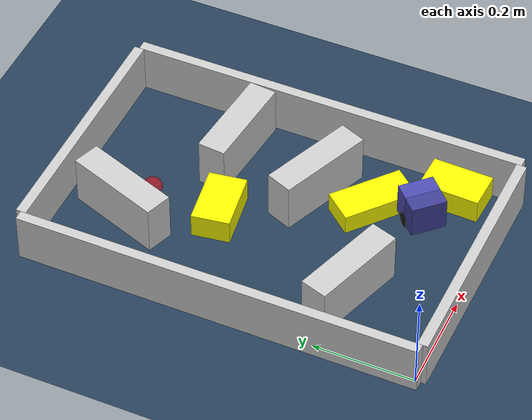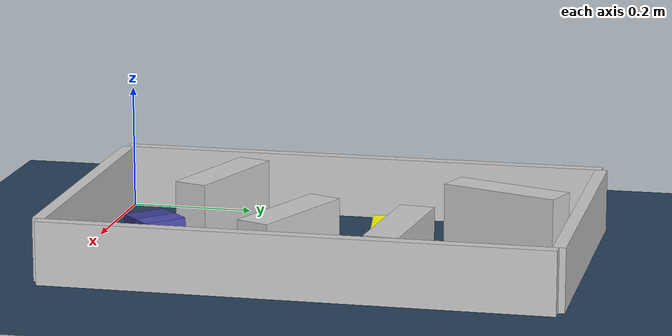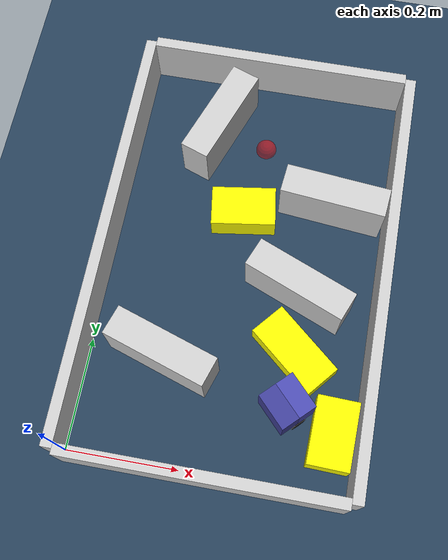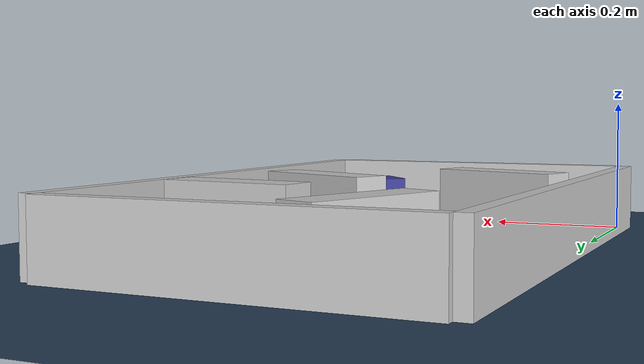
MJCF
<?xml version='1.0' encoding='utf-8'?>
<mujoco model="real_buildable">
  <compiler angle="degree" />
  <option timestep="0.002" integrator="implicitfast" iterations="100" cone="elliptic" />
  <default>
    <geom density="1" />
  </default>
  <asset>
    <texture builtin="gradient" height="3072" rgb1="0.3 0.5 0.7" rgb2="0 0 0" type="skybox" width="512" />
    <texture builtin="checker" height="300" mark="edge" markrgb="0.8 0.8 0.8" name="groundplane" rgb1="0.2 0.3 0.4" rgb2="0.1 0.2 0.3" type="2d" width="300" />
    <material name="groundplane" reflectance="0.2" texrepeat="5 5" texture="groundplane" texuniform="true" />
  </asset>
  <worldbody>
    <light dir="0 0 -1" directional="true" pos="0 0 1.5" />
    <geom name="floor" type="plane" condim="4" friction="0.5 0.005 0.001" material="groundplane" size="0 0 0.05" />
    <body name="walls">
      <geom name="wall_boundary_left" type="box" condim="4" friction="1.0 0.005 0.0001" rgba="0.8 0.8 0.8 1" pos="-0.010000 0.387500 0.050000" euler="0 0 0.000000" size="0.010000 0.397500 0.050000" />
      <geom name="wall_boundary_right" type="box" condim="4" friction="1.0 0.005 0.0001" rgba="0.8 0.8 0.8 1" pos="0.500000 0.387500 0.050000" euler="0 0 0.000000" size="0.010000 0.397500 0.050000" />
      <geom name="wall_boundary_bottom" type="box" condim="4" friction="1.0 0.005 0.0001" rgba="0.8 0.8 0.8 1" pos="0.245000 -0.010000 0.050000" euler="0 0 0.000000" size="0.245000 0.010000 0.050000" />
      <geom name="wall_boundary_top" type="box" condim="4" friction="1.0 0.005 0.0001" rgba="0.8 0.8 0.8 1" pos="0.245000 0.785000 0.050000" euler="0 0 0.000000" size="0.245000 0.010000 0.050000" />
      <geom name="wall_inner_1" type="box" condim="4" friction="1.0 0.005 0.0001" rgba="0.8 0.8 0.8 1" pos="0.352778 0.348401 0.050000" euler="0 0 157.974588" size="0.097500 0.027500 0.050000" />
      <geom name="wall_inner_2" type="box" condim="4" friction="1.0 0.005 0.0001" rgba="0.8 0.8 0.8 1" pos="0.135863 0.188165 0.050000" euler="0 0 161.920409" size="0.097500 0.027500 0.050000" />
      <geom name="wall_inner_3" type="box" condim="4" friction="1.0 0.005 0.0001" rgba="0.8 0.8 0.8 1" pos="0.390000 0.528000 0.050000" euler="0 0 174.400000" size="0.097500 0.027500 0.050000" />
      <geom name="wall_inner_4" type="box" condim="4" friction="1.0 0.005 0.0001" rgba="0.8 0.8 0.8 1" pos="0.152000 0.654000 0.050000" euler="0 0 70.200000" size="0.097500 0.027500 0.050000" />
    </body>
    <body name="car" pos="0.36444664352909262 0.13728715757850574 0.01" quat="0.92621651549400741 0 0 0.37699199782772452">
      <freejoint name="car_freejoint" />
      <inertial pos="0 0 0.0375" mass="0.35" diaginertia="0.000266 0.000266 0.000286" />
      <geom name="front_chassis_collision" type="box" pos="0.0175 0 0.0375" size="0.0175 0.035 0.0325" rgba="0.3 0.3 0.7 1" />
      <geom name="rear_chassis_collision" type="box" pos="-0.0175 0 0.0375" size="0.0175 0.035 0.0325" rgba="0.25 0.25 0.6 1" />
      <geom name="front_marker" type="box" pos="0.034 0 0.0505" size="0.002 0.015 0.01" rgba="1 0.2 0.2 1" contype="0" conaffinity="0" />
      <body name="rear_support_body" pos="-0.03 0 0.0025">
        <joint name="rear_caster_joint" type="ball" damping="0.0001" />
        <inertial pos="0 0 0" mass="0.025" diaginertia="0.000001 0.000001 0.000001" />
        <geom name="rear_support" type="sphere" pos="0 0 0" size="0.0025" friction="0 0 0" rgba="0.7 0.1 0.1 1" />
      </body>
      <body name="front_support_body" pos="0.03 0 0.0025">
        <joint name="front_caster_joint" type="ball" damping="0.0001" />
        <inertial pos="0 0 0" mass="0.025" diaginertia="0.000001 0.000001 0.000001" />
        <geom name="front_support" type="sphere" pos="0 0 0" size="0.0025" friction="0 0 0" rgba="0.1 0.7 0.1 1" />
      </body>
      <body name="left_wheel" pos="0 0.0375 0.015">
        <inertial pos="0 0 0" mass="0.05" diaginertia="0.000003 0.000006 0.000003" />
        <joint name="left_wheel_joint" type="hinge" axis="0 1 0" damping="0.01" armature="0.0001" />
        <geom name="left_wheel_collision" type="cylinder" size="0.015 0.0005" euler="90 0 0" rgba="0.1 0.1 0.1 1" />
      </body>
      <body name="right_wheel" pos="0 -0.0375 0.015">
        <inertial pos="0 0 0" mass="0.05" diaginertia="0.000003 0.000006 0.000003" />
        <joint name="right_wheel_joint" type="hinge" axis="0 1 0" damping="0.01" armature="0.0001" />
        <geom name="right_wheel_collision" type="cylinder" size="0.015 0.0005" euler="90 0 0" rgba="0.1 0.1 0.1 1" />
      </body>
    </body>
    <body name="obstacle_0_movable">
      <geom name="obstacle_0_movable" condim="4" pos="0.36347976699147638 0.2363264780722136 0.02" friction="1 0.005 0.0001" rgba="1 1 0 1" size="0.035000 0.075000 0.020000" type="box" mass="0.1" quat="0.90619135189979916 0 0 0.42286786794696807" />
      <joint type="free" />
    </body>
    <body name="obstacle_1_movable">
      <geom name="obstacle_1_movable" condim="4" pos="0.22599999999999992 0.48999999999999982 0.025000000000000001" friction="1 0.005 0.0001" rgba="1 1 0 1" size="0.037500 0.060000 0.025000" type="box" mass="0.1" quat="0.75756498438404962 0 0 -0.65275975246272244" />
      <joint type="free" />
    </body>
    <body name="obstacle_2_movable">
      <geom name="obstacle_2_movable" condim="4" pos="0.45075274594898096 0.10319174678495825 0.025000000000000001" friction="1 0.005 0.0001" rgba="1 1 0 1" size="0.037500 0.060000 0.025000" type="box" mass="0.1" quat="0.014855300005941412 0 0 0.99988965394274054" />
      <joint type="free" />
    </body>
    <site name="goal" type="sphere" pos="0.245000 0.640000 0.0" size="0.02" rgba="1 0 0 0.5" />
  </worldbody>
  <actuator>
    <velocity name="left_wheel_drive" joint="left_wheel_joint" ctrlrange="-25 25" kv="0.75" forcerange="-0.5 0.5" />
    <velocity name="right_wheel_drive" joint="right_wheel_joint" ctrlrange="-25 25" kv="0.75" forcerange="-0.5 0.5" />
  </actuator>
</mujoco>
